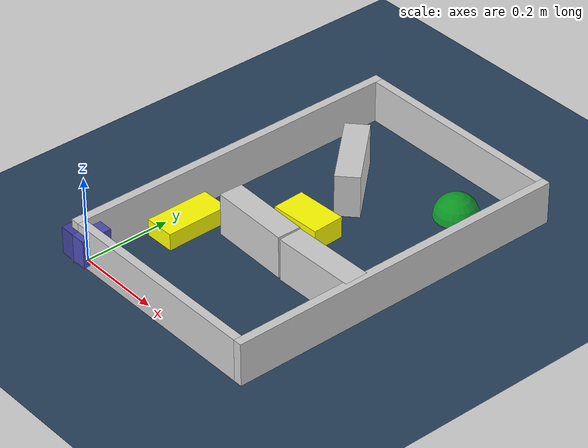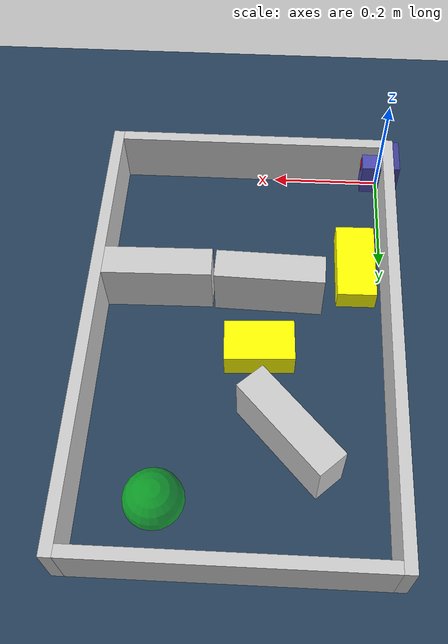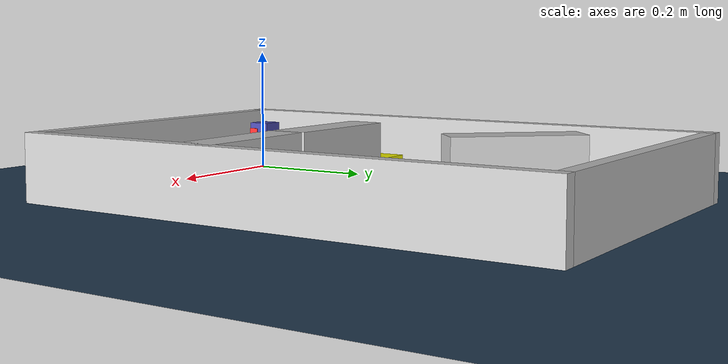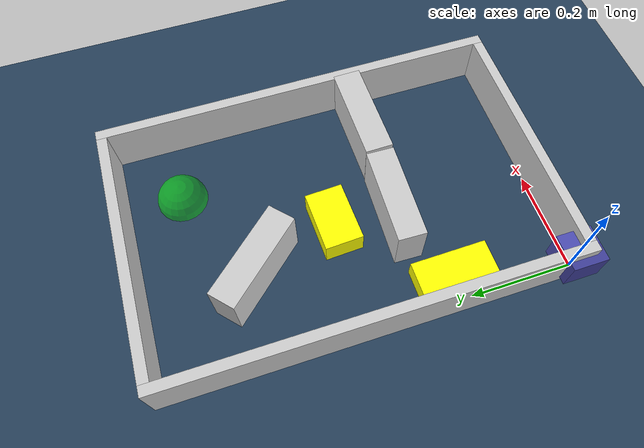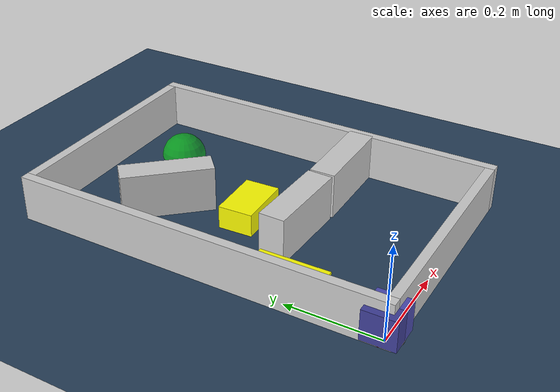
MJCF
<?xml version="1.0" ?>
<mujoco model="generated_environment">
  <option cone="elliptic" integrator="implicitfast" iterations="100" timestep="0.002"/>
  <default>
    <geom density="1"/>
  </default>
  <asset>
    <texture builtin="gradient" height="3072" rgb1="0.3 0.5 0.7" rgb2="0 0 0" type="skybox" width="512"/>
    <texture builtin="checker" height="300" mark="edge" markrgb="0.8 0.8 0.8" name="groundplane" rgb1="0.2 0.3 0.4" rgb2="0.1 0.2 0.3" type="2d" width="300"/>
    <material name="groundplane" reflectance="0.2" texrepeat="5 5" texture="groundplane" texuniform="true"/>
    <material name="robot" rgba="1.0 1.0 0.0 1.0"/>
  </asset>
  <include file="/home/dhruv/projects_dhruv/namo/namo_cpp/test_xml/little-car-modeling-package/assets/mjcf/little_car.xml"/>
  <worldbody>
    <light dir="0 0 -1" directional="true" pos="0 0 1.5"/>
    <geom condim="4" friction="0.5 0.005 0.001" material="groundplane" name="floor" size="0 0 0.05" type="plane"/>
    <body name="walls">
      <geom name="wall_1" condim="4" pos="-0.01 0.3875 0.05" friction="1 0.005 0.0001" rgba="0.800000011920929 0.800000011920929 0.800000011920929 1.0" size="0.01 0.40750000000000003 0.05" type="box"/>
      <geom name="wall_2" condim="4" pos="0.5 0.3875 0.05" friction="1 0.005 0.0001" rgba="0.800000011920929 0.800000011920929 0.800000011920929 1.0" size="0.01 0.40750000000000003 0.05" type="box"/>
      <geom name="wall_3" condim="4" pos="0.245 -0.01 0.05" friction="1 0.005 0.0001" rgba="0.800000011920929 0.800000011920929 0.800000011920929 1.0" size="0.245 0.01 0.05" type="box"/>
      <geom name="wall_4" condim="4" pos="0.245 0.785 0.05" friction="1 0.005 0.0001" rgba="0.800000011920929 0.800000011920929 0.800000011920929 1.0" size="0.245 0.01 0.05" type="box"/>
    </body>
    <body name="obstacle_1_movable">
      <geom name="obstacle_1_movable" condim="4" pos="0.047156037156058185 0.21990476950318738 0.02" quat="-0.006254596717869003 0 0 0.999980439818648" friction="1 0.005 0.0001" rgba="1 1 0 1" size="0.035 0.075 0.02" type="box" mass="0.1"/>
      <joint type="free"/>
    </body>
    <body name="obstacle_2_movable">
      <geom name="obstacle_2_movable" condim="4" pos="0.21496874135744348 0.4005390768746391 0.025" quat="-0.7232395724084183 0 0 0.6905972204566772" friction="1 0.005 0.0001" rgba="1 1 0 1" size="0.0375 0.06 0.025" type="box" mass="0.1"/>
      <joint type="free"/>
    </body>
    <body name="wall_5">
      <geom name="wall_5" condim="4" pos="0.16139994040715405 0.5670788674751336 0.05" quat="0.9320178843883957 0 0 0.36241228342894083" friction="1 0.005 0.0001" rgba="0.800000011920929 0.800000011920929 0.800000011920929 1.0" size="0.0275 0.0975 0.05" type="box"/>
    </body>
    <body name="wall_6">
      <geom name="wall_6" condim="4" pos="0.3995677219038127 0.2808469410915242 0.05" quat="0.7013641653738643 0 0 0.712803133781988" friction="1 0.005 0.0001" rgba="0.800000011920929 0.800000011920929 0.800000011920929 1.0" size="0.0275 0.0975 0.05" type="box"/>
    </body>
    <body name="wall_7">
      <geom name="wall_7" condim="4" pos="0.20166848456864359 0.2835897977250061 0.05" quat="-0.999891622583551 0 0 0.014722197092608642" friction="1 0.005 0.0001" rgba="0.800000011920929 0.800000011920929 0.800000011920929 1.0" size="0.095 0.0275 0.05" type="box"/>
    </body>
    <site name="goal" type="sphere" size="0.05 0.05 0.05" rgba="0 1 0 0.5" pos="0.37 0.67 0.0"/>
  </worldbody>
</mujoco>

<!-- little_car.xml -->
<mujoco model="little_car">
  <compiler angle="radian" autolimits="true"/>
  <default>
    <geom condim="4"/>
    <joint damping="0.01" armature="0.0001"/>
  </default>
  <worldbody>
    <body name="car" pos="0 0 0.010000">
      <freejoint name="car_freejoint"/>
      <inertial pos="0.000000 0 0.037500" mass="0.350000"
                diaginertia="0.000266 0.000266 0.000286"/>
      <geom name="front_chassis_collision" type="box" pos="0.017500 0 0.037500"
            size="0.017500 0.035000 0.032500"
            rgba="0.3 0.3 0.7 1"/>
      <geom name="rear_chassis_collision" type="box" pos="-0.017500 0 0.037500"
            size="0.017500 0.035000 0.032500"
            rgba="0.25 0.25 0.6 1"/>
      <geom name="front_marker" type="box" pos="0.034000 0 0.050500"
            size="0.002000 0.015000 0.010000"
            rgba="1.0 0.2 0.2 1" contype="0" conaffinity="0"/>

      <body name="rear_support_body" pos="-0.030000 0.000000 0.002500">
        <joint name="rear_caster_joint" type="ball" damping="0.0001"/>
        <inertial pos="0 0 0" mass="0.025000"
                  diaginertia="0.000001 0.000001 0.000001"/>
        <geom name="rear_support" type="sphere"
              pos="0 0 0"
              size="0.002500"
              friction="0.000000 0.000000 0.000000"
              rgba="0.7 0.1 0.1 1"/>
      </body>

      <body name="front_support_body" pos="0.030000 0.000000 0.002500">
        <joint name="front_caster_joint" type="ball" damping="0.0001"/>
        <inertial pos="0 0 0" mass="0.025000"
                  diaginertia="0.000001 0.000001 0.000001"/>
        <geom name="front_support" type="sphere"
              pos="0 0 0"
              size="0.002500"
              friction="0.000000 0.000000 0.000000"
              rgba="0.1 0.7 0.1 1"/>
      </body>

      <body name="left_wheel" pos="0.000000 0.034000 0.015000">
        <inertial pos="0 0 0" mass="0.050000"
                  diaginertia="0.000003 0.000006 0.000003"/>
        <joint name="left_wheel_joint" type="hinge" axis="0 1 0"/>
        <geom name="left_wheel_collision" type="cylinder" size="0.015000 0.000500"
              euler="1.57079632679 0 0" rgba="0.1 0.1 0.1 1"/>
      </body>

      <body name="right_wheel" pos="0.000000 -0.034000 0.015000">
        <inertial pos="0 0 0" mass="0.050000"
                  diaginertia="0.000003 0.000006 0.000003"/>
        <joint name="right_wheel_joint" type="hinge" axis="0 1 0"/>
        <geom name="right_wheel_collision" type="cylinder" size="0.015000 0.000500"
              euler="1.57079632679 0 0" rgba="0.1 0.1 0.1 1"/>
      </body>
    </body>
  </worldbody>
  <contact>
    <exclude body1="car" body2="left_wheel"/>
    <exclude body1="car" body2="right_wheel"/>
  </contact>
  <actuator>
    <velocity name="left_wheel_drive" joint="left_wheel_joint"
              ctrlrange="-25.000000 25.000000"
              kv="0.750000" forcerange="-0.500000 0.500000"/>
    <velocity name="right_wheel_drive" joint="right_wheel_joint"
              ctrlrange="-25.000000 25.000000"
              kv="0.750000" forcerange="-0.500000 0.500000"/>
  </actuator>
</mujoco>
